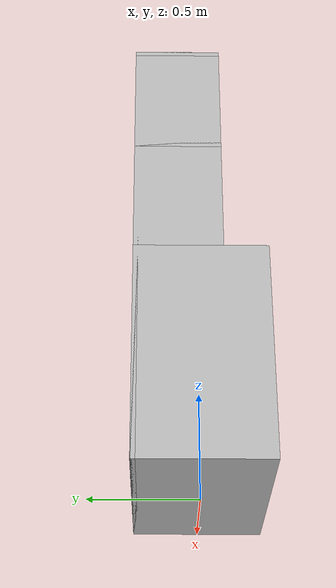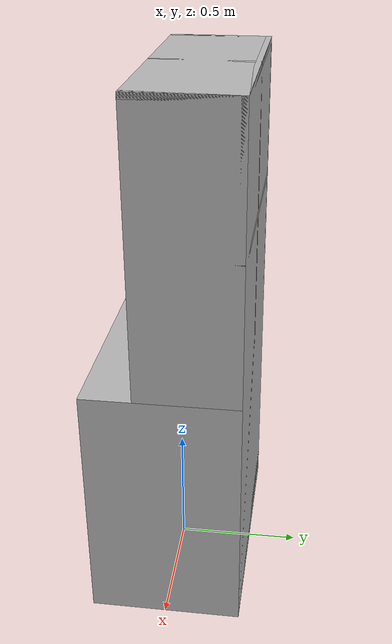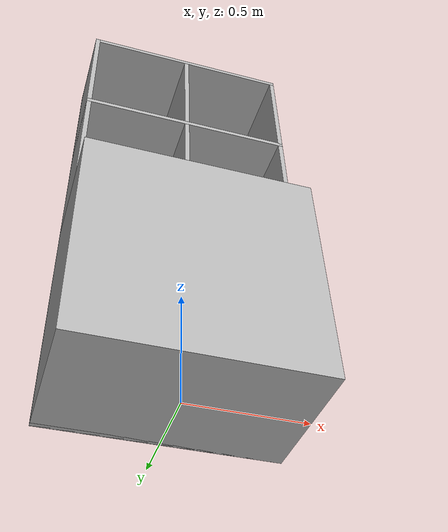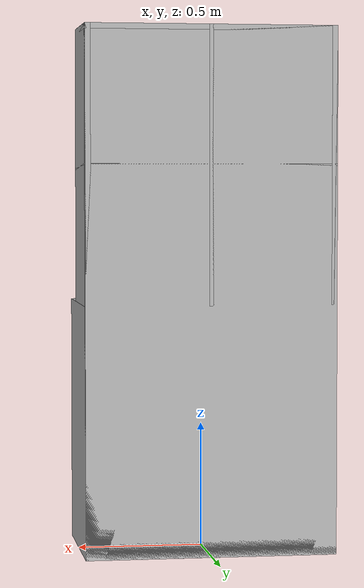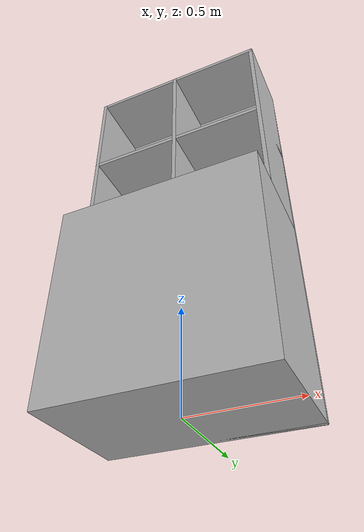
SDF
<?xml version="1.0"?>
<sdf version="1.6">
  <model name="reo2016/closet">
    <link name="1_link">
      <collision name="1_col">
        <geometry>
          <box>
            <size>1.0 0.6 0.995</size>
          </box>
        </geometry>
      </collision>
      <visual name="1_vis">
        <geometry>
          <box>
            <size>1.0 0.6 0.995</size>
          </box>
        </geometry>
      </visual>
      <pose>0 0 0.4975 0 0 0</pose>
    </link>
    <link name="2_link">
      <collision name="2_col">
        <geometry>
          <box>
            <size>0.022 0.4 1.1</size>
          </box>
        </geometry>
      </collision>
      <visual name="2_vis">
        <geometry>
          <box>
            <size>0.022 0.4 1.1</size>
          </box>
        </geometry>
      </visual>
      <pose>-0.489 0.1 1.545 0 0 0</pose>
    </link>
    <link name="3_link">
      <collision name="3_col">
        <geometry>
          <box>
            <size>0.022 0.4 1.1</size>
          </box>
        </geometry>
      </collision>
      <visual name="3_vis">
        <geometry>
          <box>
            <size>0.022 0.4 1.1</size>
          </box>
        </geometry>
      </visual>
      <pose>0.0 0.1 1.545 0 0 0</pose>
    </link>
    <link name="4_link">
      <collision name="4_col">
        <geometry>
          <box>
            <size>0.022 0.4 1.1</size>
          </box>
        </geometry>
      </collision>
      <visual name="4_vis">
        <geometry>
          <box>
            <size>0.022 0.4 1.1</size>
          </box>
        </geometry>
      </visual>
      <pose>0.489 0.1 1.545 0 0 0</pose>
    </link>
    <link name="5_link">
      <collision name="5_col">
        <geometry>
          <box>
            <size>1.0 0.4 0.022</size>
          </box>
        </geometry>
      </collision>
      <visual name="5_vis">
        <geometry>
          <box>
            <size>1.0 0.4 0.022</size>
          </box>
        </geometry>
      </visual>
      <pose>0.0 0.1 1.541 0 0 0</pose>
    </link>
    <link name="6_link">
      <collision name="6_col">
        <geometry>
          <box>
            <size>1.0 0.4 0.022</size>
          </box>
        </geometry>
      </collision>
      <visual name="6_vis">
        <geometry>
          <box>
            <size>1.0 0.4 0.022</size>
          </box>
        </geometry>
      </visual>
      <pose>0.0 0.1 2.084 0 0 0</pose>
    </link>
    <link name="7_link">
      <collision name="7_col">
        <geometry>
          <box>
            <size>1.0 0.022 2.095</size>
          </box>
        </geometry>
      </collision>
      <visual name="7_vis">
        <geometry>
          <box>
            <size>1.0 0.022 2.095</size>
          </box>
        </geometry>
      </visual>
      <pose>0.0 0.289 1.0475 0 0 0</pose>
    </link>
    <link name="on_top_of">
      <virtual_volume name="on_top_of_vv">
        <geometry>
          <box>
            <size>1.0 0.55 0.215</size>
          </box>
        </geometry>
        <pose>0.0 0.025 1.1425 0 0 0</pose>
      </virtual_volume>
    </link>
    <link name="in_front_of">
      <virtual_volume name="in_front_of_vv">
        <geometry>
          <box>
            <size>1.0 0.2 0.01</size>
          </box>
        </geometry>
        <pose>0.0 -1.0 0.005 0 0 0</pose>
      </virtual_volume>
    </link>
    <static>true</static>
  </model>
</sdf>
